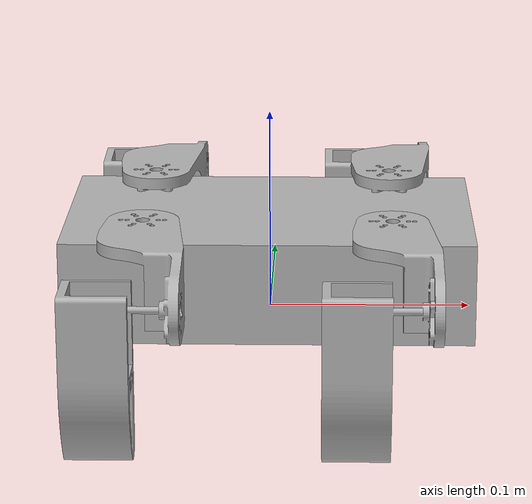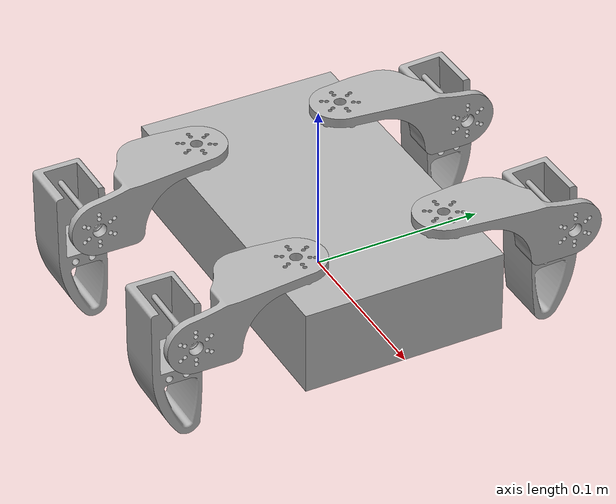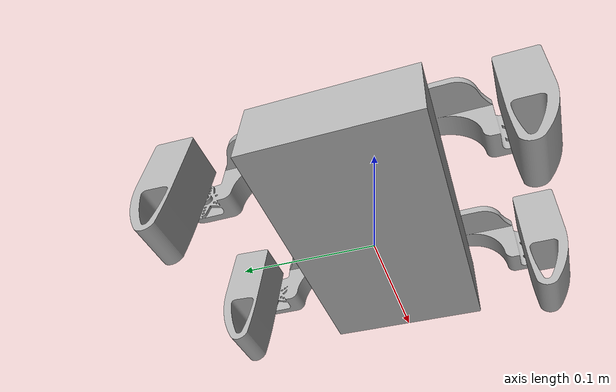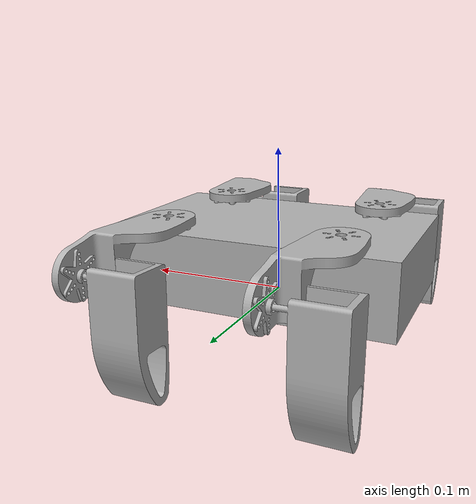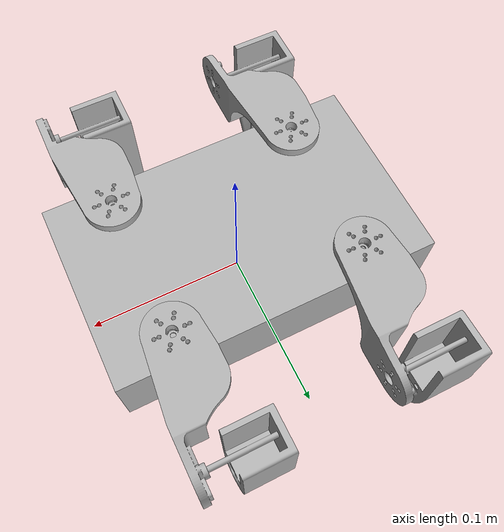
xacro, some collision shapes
<?xml version="1.0" ?>
<robot name="quadrapod" xmlns:xacro="http://www.ros.org/wiki/xacro">

<xacro:include filename="$(find quadrapod_description)/urdf/materials.xacro" />
<xacro:include filename="$(find quadrapod_description)/urdf/quadrapod.ros2control" />
<xacro:include filename="$(find quadrapod_description)/urdf/quadrapod.gazebo" />
<link name="base_link">
  <inertial>
    <origin xyz="-5.0015504173558454e-05 -4.99967500864248e-06 0.00996105794740828" rpy="0 0 0"/>
    <mass value="1.5584416884210213"/>
    <inertia ixx="0.002627" iyy="0.007133" izz="0.009449" ixy="0.0" iyz="-0.0" ixz="-0.0"/>
  </inertial>
  <visual>
    <origin xyz="0 0 0" rpy="0 0 0"/>
    <geometry>
      <mesh filename="file://$(find quadrapod_description)/meshes/base_link.stl" scale="0.001 0.001 0.001"/>
    </geometry>
    <material name="silver"/>
  </visual>
  <collision>
    <origin xyz="0 0 0.02498" rpy="0 0 0"/>
    <geometry>
      <box size="0.2 0.12 0.04996"/>
    </geometry>
  </collision>
</link>

<link name="fr_arm_1">
  <inertial>
    <origin xyz="0.008254738157469396 -0.03564737564981417 -0.0032195239725941738" rpy="0 0 0"/>
    <mass value="0.21636377650059097"/>
    <inertia ixx="0.000149" iyy="4.9e-05" izz="0.000151" ixy="3.4e-05" iyz="-3.3e-05" ixz="1.2e-05"/>
  </inertial>
  <visual>
    <origin xyz="-0.06 0.045 -0.04996" rpy="0 0 0"/>
    <geometry>
      <mesh filename="file://$(find quadrapod_description)/meshes/fr_arm_1.stl" scale="0.001 0.001 0.001"/>
    </geometry>
    <material name="silver"/>
  </visual>
  <collision>
    <origin xyz="-0.06 0.045 -0.04996" rpy="0 0 0"/>
    <geometry>
      <mesh filename="file://$(find quadrapod_description)/meshes/fr_arm_1.stl" scale="0.001 0.001 0.001"/>
    </geometry>
  </collision>
</link>

<link name="rr_arm_1">
  <inertial>
    <origin xyz="0.008454024087751408 -0.03560064001391729 -0.003219523987479704" rpy="0 0 0"/>
    <mass value="0.21636377649549796"/>
    <inertia ixx="0.000149" iyy="5e-05" izz="0.000151" ixy="3.5e-05" iyz="-3.3e-05" ixz="1.3e-05"/>
  </inertial>
  <visual>
    <origin xyz="0.06 0.045 -0.04996" rpy="0 0 0"/>
    <geometry>
      <mesh filename="file://$(find quadrapod_description)/meshes/rr_arm_1.stl" scale="0.001 0.001 0.001"/>
    </geometry>
    <material name="silver"/>
  </visual>
  <collision>
    <origin xyz="0.06 0.045 -0.04996" rpy="0 0 0"/>
    <geometry>
      <mesh filename="file://$(find quadrapod_description)/meshes/rr_arm_1.stl" scale="0.001 0.001 0.001"/>
    </geometry>
  </collision>
</link>

<link name="rl_arm_1">
  <inertial>
    <origin xyz="0.00845402918702444 0.03560065443802035 -0.0032195303464475633" rpy="0 0 0"/>
    <mass value="0.2163639575889156"/>
    <inertia ixx="0.000149" iyy="5e-05" izz="0.000151" ixy="-3.5e-05" iyz="3.3e-05" ixz="1.3e-05"/>
  </inertial>
  <visual>
    <origin xyz="0.06 -0.045 -0.04996" rpy="0 0 0"/>
    <geometry>
      <mesh filename="file://$(find quadrapod_description)/meshes/rl_arm_1.stl" scale="0.001 0.001 0.001"/>
    </geometry>
    <material name="silver"/>
  </visual>
  <collision>
    <origin xyz="0.06 -0.045 -0.04996" rpy="0 0 0"/>
    <geometry>
      <mesh filename="file://$(find quadrapod_description)/meshes/rl_arm_1.stl" scale="0.001 0.001 0.001"/>
    </geometry>
  </collision>
</link>

<link name="fr_end_1">
  <inertial>
    <origin xyz="-0.034027337040431774 -0.0003228700326182721 -0.03160794144700148" rpy="0 0 0"/>
    <mass value="0.2645070789705211"/>
    <inertia ixx="0.00017" iyy="0.000169" izz="5.2e-05" ixy="0.0" iyz="6e-06" ixz="7e-06"/>
  </inertial>
  <visual>
    <origin xyz="-0.075268 0.115341 -0.036247" rpy="0 0 0"/>
    <geometry>
      <mesh filename="file://$(find quadrapod_description)/meshes/fr_end_1.stl" scale="0.001 0.001 0.001"/>
    </geometry>
    <material name="silver"/>
  </visual>
  <collision>
    <origin xyz="-0.075268 0.115341 -0.036247" rpy="0 0 0"/>
    <geometry>
      <mesh filename="file://$(find quadrapod_description)/meshes/fr_end_1.stl" scale="0.001 0.001 0.001"/>
    </geometry>
  </collision>
</link>

<link name="rr_end_1">
  <inertial>
    <origin xyz="-0.034024795207596506 -0.0003426070074352139 -0.031610202053977875" rpy="0 0 0"/>
    <mass value="0.26450707899322123"/>
    <inertia ixx="0.00017" iyy="0.000169" izz="5.2e-05" ixy="0.0" iyz="7e-06" ixz="7e-06"/>
  </inertial>
  <visual>
    <origin xyz="0.044339 0.115254 -0.036247" rpy="0 0 0"/>
    <geometry>
      <mesh filename="file://$(find quadrapod_description)/meshes/rr_end_1.stl" scale="0.001 0.001 0.001"/>
    </geometry>
    <material name="silver"/>
  </visual>
  <collision>
    <origin xyz="0.044339 0.115254 -0.036247" rpy="0 0 0"/>
    <geometry>
      <mesh filename="file://$(find quadrapod_description)/meshes/rr_end_1.stl" scale="0.001 0.001 0.001"/>
    </geometry>
  </collision>
</link>

<link name="fl_arm_1">
  <inertial>
    <origin xyz="0.008454029187023732 0.035600654432822676 -0.0032195303708393574" rpy="0 0 0"/>
    <mass value="0.2163639575889156"/>
    <inertia ixx="0.000149" iyy="5e-05" izz="0.000151" ixy="-3.5e-05" iyz="3.3e-05" ixz="1.3e-05"/>
  </inertial>
  <visual>
    <origin xyz="-0.06 -0.045 -0.04996" rpy="0 0 0"/>
    <geometry>
      <mesh filename="file://$(find quadrapod_description)/meshes/fl_arm_1.stl" scale="0.001 0.001 0.001"/>
    </geometry>
    <material name="silver"/>
  </visual>
  <collision>
    <origin xyz="-0.06 -0.045 -0.04996" rpy="0 0 0"/>
    <geometry>
      <mesh filename="file://$(find quadrapod_description)/meshes/fl_arm_1.stl" scale="0.001 0.001 0.001"/>
    </geometry>
  </collision>
</link>

<link name="rl_end_1">
  <inertial>
    <origin xyz="-0.03402437579391139 0.0017890563833676265 -0.03156185975962293" rpy="0 0 0"/>
    <mass value="0.2645066749304347"/>
    <inertia ixx="0.00017" iyy="0.00017" izz="5.1e-05" ixy="-0.0" iyz="-2e-06" ixz="7e-06"/>
  </inertial>
  <visual>
    <origin xyz="0.044339 -0.115254 -0.036247" rpy="0 0 0"/>
    <geometry>
      <mesh filename="file://$(find quadrapod_description)/meshes/rl_end_1.stl" scale="0.001 0.001 0.001"/>
    </geometry>
    <material name="silver"/>
  </visual>
  <collision>
    <origin xyz="0.044339 -0.115254 -0.036247" rpy="0 0 0"/>
    <geometry>
      <mesh filename="file://$(find quadrapod_description)/meshes/rl_end_1.stl" scale="0.001 0.001 0.001"/>
    </geometry>
  </collision>
</link>

<link name="fl_end_1">
  <inertial>
    <origin xyz="-0.03402437579391188 0.001789056372470177 -0.03156185978895383" rpy="0 0 0"/>
    <mass value="0.2645066749304345"/>
    <inertia ixx="0.00017" iyy="0.00017" izz="5.1e-05" ixy="-0.0" iyz="-2e-06" ixz="7e-06"/>
  </inertial>
  <visual>
    <origin xyz="-0.075661 -0.115254 -0.036247" rpy="0 0 0"/>
    <geometry>
      <mesh filename="file://$(find quadrapod_description)/meshes/fl_end_1.stl" scale="0.001 0.001 0.001"/>
    </geometry>
    <material name="silver"/>
  </visual>
  <collision>
    <origin xyz="-0.075661 -0.115254 -0.036247" rpy="0 0 0"/>
    <geometry>
      <mesh filename="file://$(find quadrapod_description)/meshes/fl_end_1.stl" scale="0.001 0.001 0.001"/>
    </geometry>
  </collision>
</link>

<joint name="Revolute 48" type="continuous">
  <origin xyz="0.06 -0.045 0.04996" rpy="0 0 0"/>
  <parent link="base_link"/>
  <child link="fr_arm_1"/>
  <axis xyz="0.0 0.0 1.0"/>
</joint>

<joint name="Revolute 49" type="continuous">
  <origin xyz="-0.06 -0.045 0.04996" rpy="0 0 0"/>
  <parent link="base_link"/>
  <child link="rr_arm_1"/>
  <axis xyz="-0.0 -0.0 1.0"/>
</joint>

<joint name="Revolute 51" type="continuous">
  <origin xyz="-0.06 0.045 0.04996" rpy="0 0 0"/>
  <parent link="base_link"/>
  <child link="rl_arm_1"/>
  <axis xyz="-0.0 -0.0 1.0"/>
</joint>

<joint name="Revolute 52" type="continuous">
  <origin xyz="0.015268 -0.070341 -0.013713" rpy="0 0 0"/>
  <parent link="fr_arm_1"/>
  <child link="fr_end_1"/>
  <axis xyz="-0.999986 0.005286 -0.0"/>
</joint>

<joint name="Revolute 53" type="continuous">
  <origin xyz="0.015661 -0.070254 -0.013713" rpy="0 0 0"/>
  <parent link="rr_arm_1"/>
  <child link="rr_end_1"/>
  <axis xyz="-1.0 -0.000308 -0.0"/>
</joint>

<joint name="Revolute 54" type="continuous">
  <origin xyz="0.06 0.045 0.04996" rpy="0 0 0"/>
  <parent link="base_link"/>
  <child link="fl_arm_1"/>
  <axis xyz="0.0 -0.0 1.0"/>
</joint>

<joint name="Revolute 55" type="continuous">
  <origin xyz="0.015661 0.070254 -0.013713" rpy="0 0 0"/>
  <parent link="rl_arm_1"/>
  <child link="rl_end_1"/>
  <axis xyz="-1.0 0.000308 0.0"/>
</joint>

<joint name="Revolute 56" type="continuous">
  <origin xyz="0.015661 0.070254 -0.013713" rpy="0 0 0"/>
  <parent link="fl_arm_1"/>
  <child link="fl_end_1"/>
  <axis xyz="-1.0 0.000308 0.0"/>
</joint>

</robot>

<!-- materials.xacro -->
<robot name="quadrapod" xmlns:xacro="http://www.ros.org/wiki/xacro" >

<material name="silver">
  <color rgba="0.700 0.700 0.700 1.000"/>
</material>

</robot>

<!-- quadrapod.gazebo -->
<robot name="quadrapod" xmlns:xacro="http://www.ros.org/wiki/xacro" >

<xacro:property name="body_color" value="Gazebo/Silver" />

<gazebo reference="base_link">
  <material>${body_color}</material>
  <mu1>0.2</mu1>
  <mu2>0.2</mu2>
  <self_collide>true</self_collide>
  <gravity>true</gravity>
</gazebo>

<gazebo reference="fr_arm_1">
  <material>${body_color}</material>
  <mu1>0.2</mu1>
  <mu2>0.2</mu2>
  <self_collide>true</self_collide>
</gazebo>

<gazebo reference="rr_arm_1">
  <material>${body_color}</material>
  <mu1>0.2</mu1>
  <mu2>0.2</mu2>
  <self_collide>true</self_collide>
</gazebo>

<gazebo reference="rl_arm_1">
  <material>${body_color}</material>
  <mu1>0.2</mu1>
  <mu2>0.2</mu2>
  <self_collide>true</self_collide>
</gazebo>

<gazebo reference="fr_end_1">
  <material>${body_color}</material>
  <mu1>0.2</mu1>
  <mu2>0.2</mu2>
  <self_collide>true</self_collide>
</gazebo>

<gazebo reference="rr_end_1">
  <material>${body_color}</material>
  <mu1>0.2</mu1>
  <mu2>0.2</mu2>
  <self_collide>true</self_collide>
</gazebo>

<gazebo reference="fl_arm_1">
  <material>${body_color}</material>
  <mu1>0.2</mu1>
  <mu2>0.2</mu2>
  <self_collide>true</self_collide>
</gazebo>

<gazebo reference="rl_end_1">
  <material>${body_color}</material>
  <mu1>0.2</mu1>
  <mu2>0.2</mu2>
  <self_collide>true</self_collide>
</gazebo>

<gazebo reference="fl_end_1">
  <material>${body_color}</material>
  <mu1>0.2</mu1>
  <mu2>0.2</mu2>
  <self_collide>true</self_collide>
</gazebo>

</robot>
